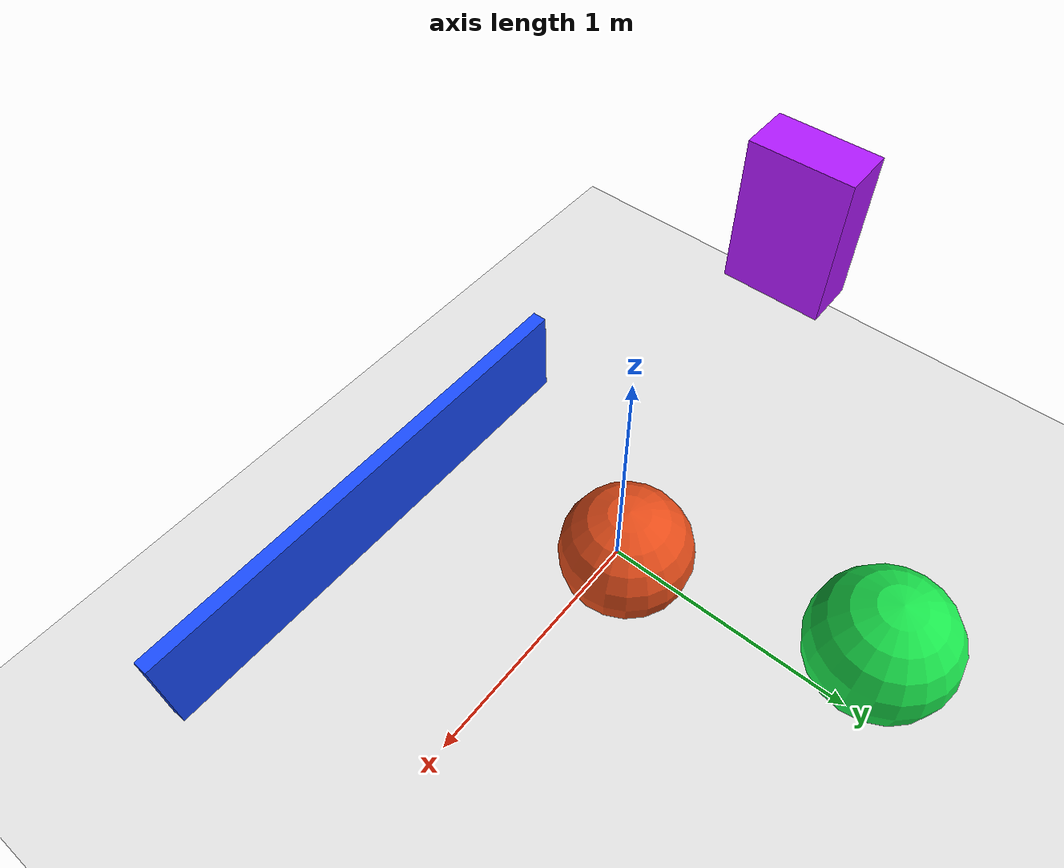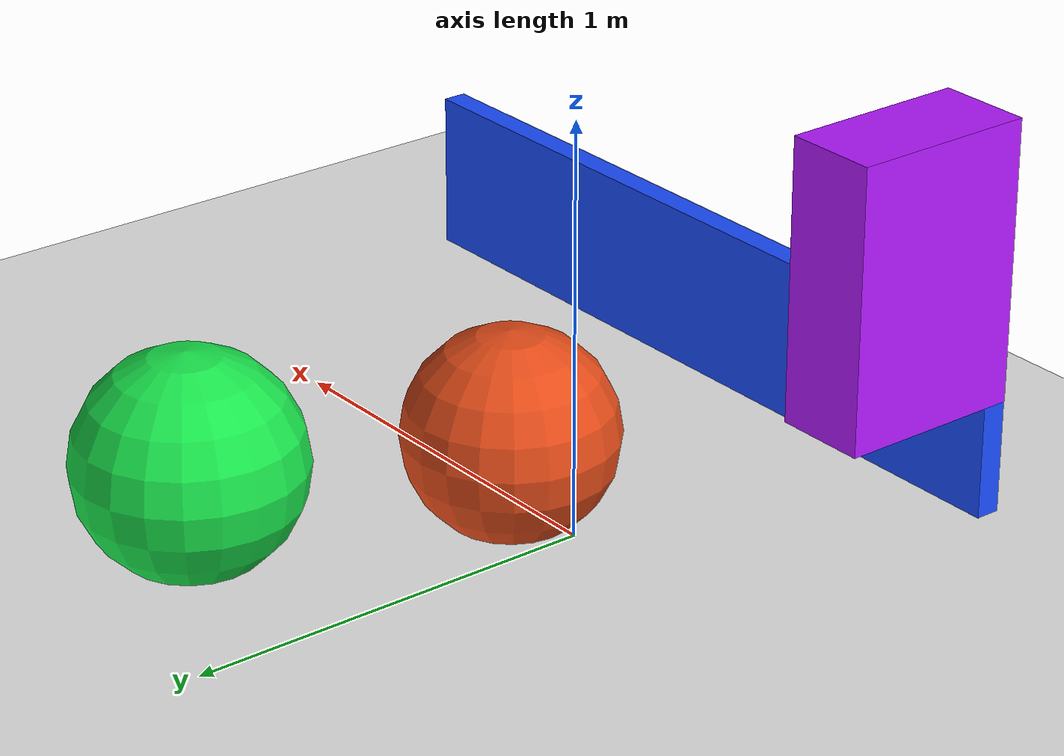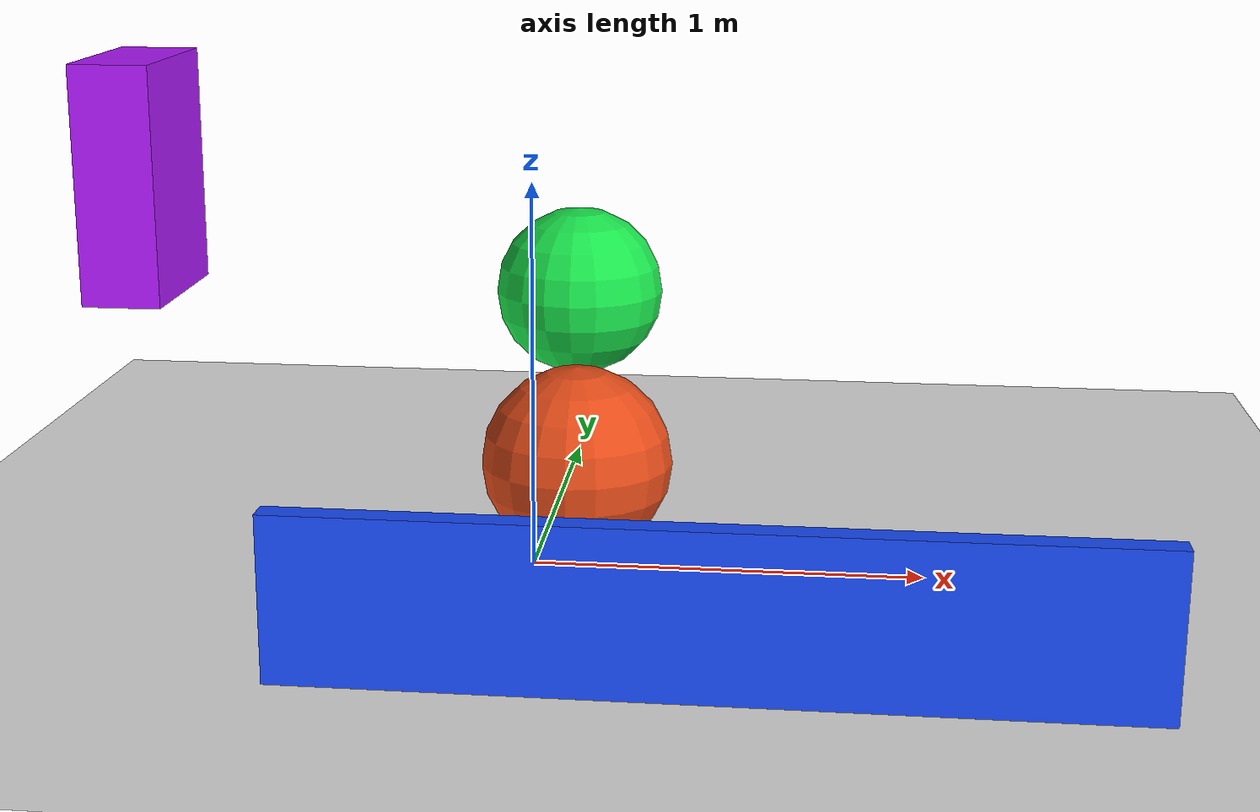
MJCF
<mujoco>
  <worldbody>
    <light diffuse=".5 .5 .5" pos="0 0 3" dir="0 0 -1"/>
    <geom name="ground" type="plane" size="3 3 .1" rgba=".9 .9 .9 1"/>
    <body name="ball_static" pos=".1 .1 .25">
      <geom name="sphere" size=".25" rgba=".9 .3 .1 1"/>
    </body>
    <body name="ball_dynamic" pos="0 1 .5">
      <joint type="free"/>
      <geom name="sphere2" size=".25" rgba=".1 .9 .3 1"/>
    </body>
    <body name="fixed_lever" pos=".5 -.8 .2">
      <joint/>
      <geom name="box" type="box" size="1 .03 .2" rgba=".1 .3 1 1"/>
    </body>
    <body name="cube" pos="-1 0 1">
      <joint type="free"/>
      <geom name="box2" type="box" size=".1 .2 .3" rgba=".7 .1 1 1"/>
    </body>
  </worldbody>
</mujoco>
